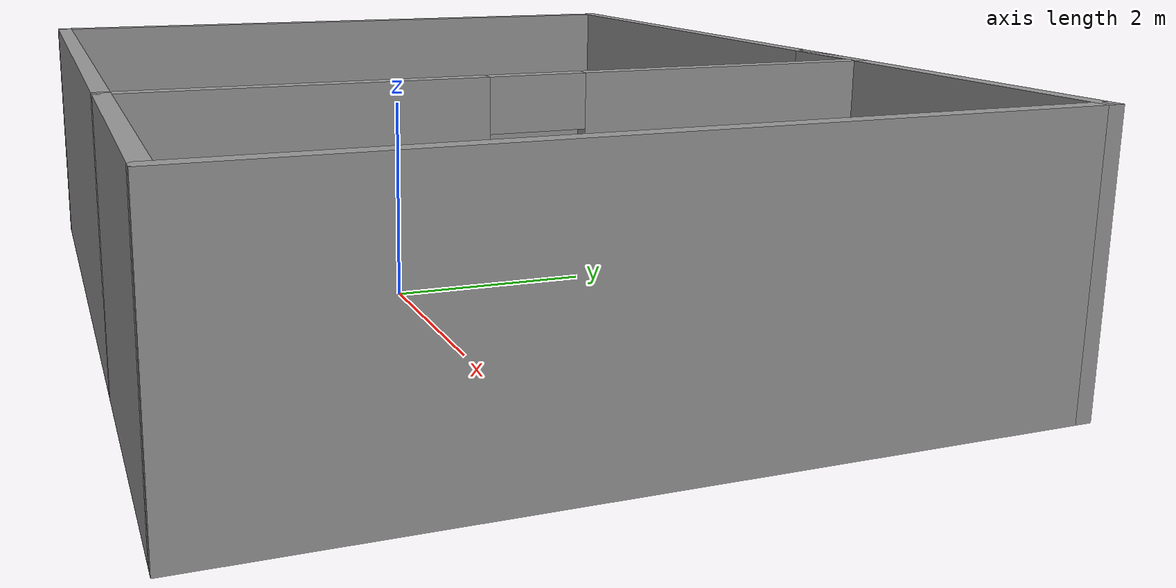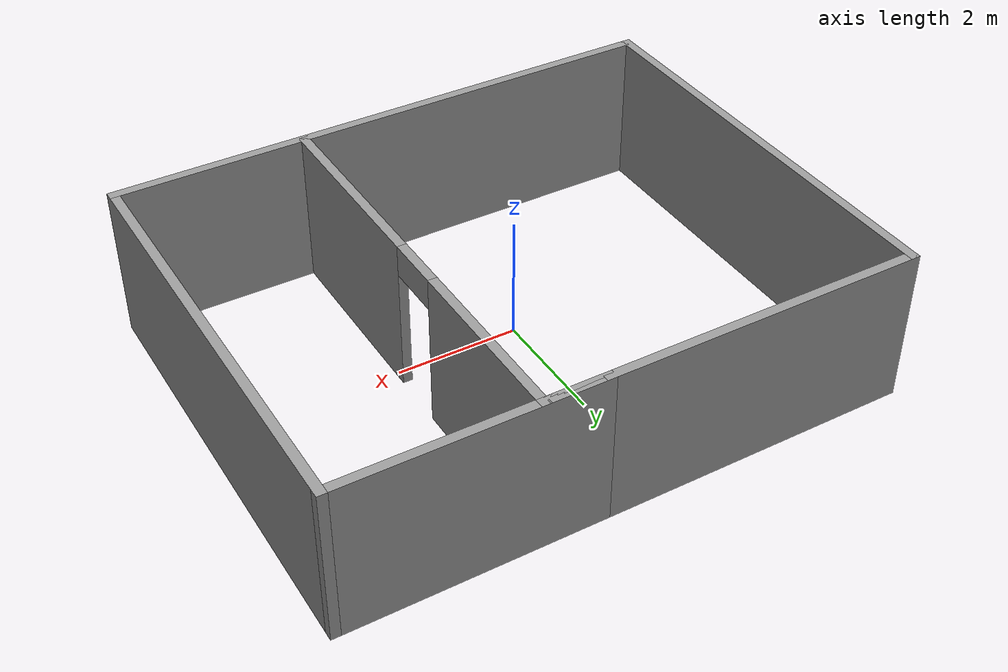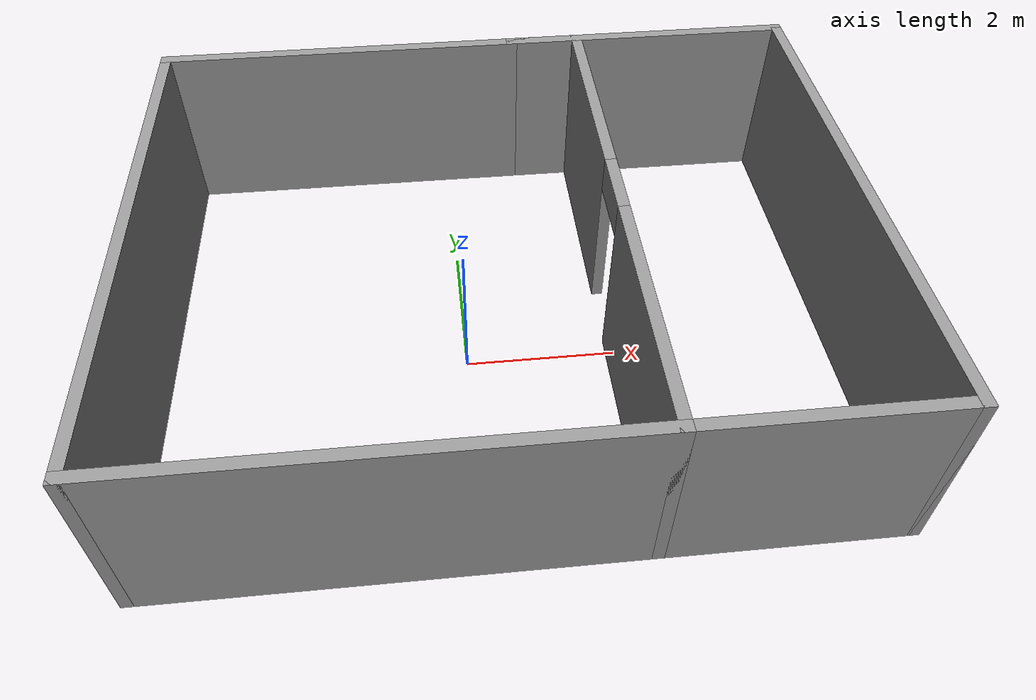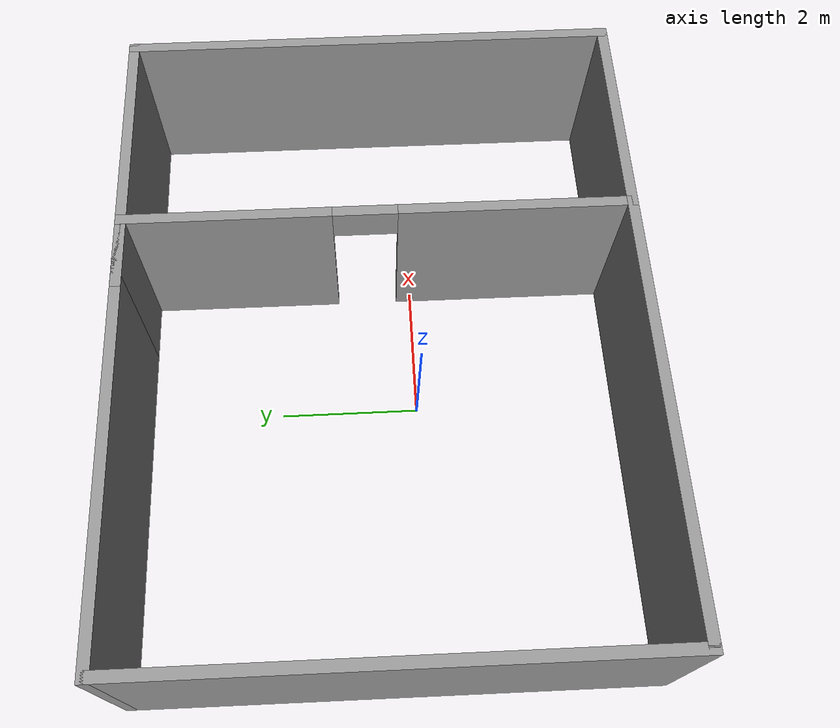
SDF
<?xml version='1.0'?>
<sdf version='1.7'>
  <model name='two_rooms'>
    <pose>0.5 0.5 0 0 -0 0</pose>
    <link name='Wall_22'>
      <collision name='Wall_22_Collision'>
        <geometry>
          <box>
            <size>5.15 0.15 2.5</size>
          </box>
        </geometry>
        <pose>0 0 1.25 0 -0 0</pose>
      </collision>
      <visual name='Wall_22_Visual'>
        <pose>0 0 1.25 0 -0 0</pose>
        <geometry>
          <box>
            <size>5.15 0.15 2.5</size>
          </box>
        </geometry>
        <material>
          <script>
            <uri>file://media/materials/scripts/gazebo.material</uri>
            <name>Gazebo/Grey</name>
          </script>
          <ambient>1 1 1 1</ambient>
        </material>
        <meta>
          <layer>0</layer>
        </meta>
      </visual>
      <pose>-2 3.5 0 0 -0 3.14159</pose>
    </link>
    <link name='Wall_23'>
      <collision name='Wall_23_Collision'>
        <geometry>
          <box>
            <size>7.15 0.15 2.5</size>
          </box>
        </geometry>
        <pose>0 0 1.25 0 -0 0</pose>
      </collision>
      <visual name='Wall_23_Visual'>
        <pose>0 0 1.25 0 -0 0</pose>
        <geometry>
          <box>
            <size>7.15 0.15 2.5</size>
          </box>
        </geometry>
        <material>
          <script>
            <uri>file://media/materials/scripts/gazebo.material</uri>
            <name>Gazebo/Grey</name>
          </script>
          <ambient>1 1 1 1</ambient>
        </material>
        <meta>
          <layer>0</layer>
        </meta>
      </visual>
      <pose>-4.5 -0 0 0 -0 -1.5708</pose>
    </link>
    <link name='Wall_24'>
      <collision name='Wall_24_Collision'>
        <geometry>
          <box>
            <size>6.11559 0.15 2.5</size>
          </box>
        </geometry>
        <pose>0 0 1.25 0 -0 0</pose>
      </collision>
      <visual name='Wall_24_Visual'>
        <pose>0 0 1.25 0 -0 0</pose>
        <geometry>
          <box>
            <size>6.11559 0.15 2.5</size>
          </box>
        </geometry>
        <material>
          <script>
            <uri>file://media/materials/scripts/gazebo.material</uri>
            <name>Gazebo/Grey</name>
          </script>
          <ambient>1 1 1 1</ambient>
        </material>
        <meta>
          <layer>0</layer>
        </meta>
      </visual>
      <pose>-1.51721 -3.5 0 0 -0 0</pose>
    </link>
    <link name='Wall_25'>
      <collision name='Wall_25_Collision'>
        <geometry>
          <box>
            <size>3.18441 0.15 2.5</size>
          </box>
        </geometry>
        <pose>0 0 1.25 0 -0 0</pose>
      </collision>
      <visual name='Wall_25_Visual'>
        <pose>0 0 1.25 0 -0 0</pose>
        <geometry>
          <box>
            <size>3.18441 0.15 2.5</size>
          </box>
        </geometry>
        <material>
          <script>
            <uri>file://media/materials/scripts/gazebo.material</uri>
            <name>Gazebo/Grey</name>
          </script>
          <ambient>1 1 1 1</ambient>
        </material>
        <meta>
          <layer>0</layer>
        </meta>
      </visual>
      <pose>2.98279 -3.5 0 0 -0 0</pose>
    </link>
    <link name='Wall_26'>
      <collision name='Wall_26_Collision'>
        <geometry>
          <box>
            <size>7.15 0.15 2.5</size>
          </box>
        </geometry>
        <pose>0 0 1.25 0 -0 0</pose>
      </collision>
      <visual name='Wall_26_Visual'>
        <pose>0 0 1.25 0 -0 0</pose>
        <geometry>
          <box>
            <size>7.15 0.15 2.5</size>
          </box>
        </geometry>
        <material>
          <script>
            <uri>file://media/materials/scripts/gazebo.material</uri>
            <name>Gazebo/Grey</name>
          </script>
          <ambient>1 1 1 1</ambient>
        </material>
        <meta>
          <layer>0</layer>
        </meta>
      </visual>
      <pose>4.5 -0 0 0 -0 1.5708</pose>
    </link>
    <link name='Wall_27'>
      <collision name='Wall_27_Collision'>
        <geometry>
          <box>
            <size>4.15 0.15 2.5</size>
          </box>
        </geometry>
        <pose>0 0 1.25 0 -0 0</pose>
      </collision>
      <visual name='Wall_27_Visual'>
        <pose>0 0 1.25 0 -0 0</pose>
        <geometry>
          <box>
            <size>4.15 0.15 2.5</size>
          </box>
        </geometry>
        <material>
          <script>
            <uri>file://media/materials/scripts/gazebo.material</uri>
            <name>Gazebo/Grey</name>
          </script>
          <ambient>1 1 1 1</ambient>
        </material>
        <meta>
          <layer>0</layer>
        </meta>
      </visual>
      <pose>2.5 3.5 0 0 -0 3.14159</pose>
    </link>
    <link name='Wall_28'>
      <collision name='Wall_28_Collision'>
        <geometry>
          <box>
            <size>1.11559 0.15 2.5</size>
          </box>
        </geometry>
        <pose>0 0 1.25 0 -0 0</pose>
      </collision>
      <visual name='Wall_28_Visual'>
        <pose>0 0 1.25 0 -0 0</pose>
        <geometry>
          <box>
            <size>1.11559 0.15 2.5</size>
          </box>
        </geometry>
        <material>
          <script>
            <uri>file://media/materials/scripts/gazebo.material</uri>
            <name>Gazebo/Grey</name>
          </script>
          <ambient>1 1 1 1</ambient>
        </material>
        <meta>
          <layer>0</layer>
        </meta>
      </visual>
      <pose>0.982792 3.5 0 0 -0 0</pose>
    </link>
    <link name='Wall_29'>
      <pose>1.46558 -0 0 0 -0 -1.5708</pose>
      <visual name='Wall_29_Visual_0'>
        <pose>-2.0995 0 1.25 0 -0 0</pose>
        <geometry>
          <box>
            <size>2.951 0.15 2.5</size>
          </box>
        </geometry>
        <material>
          <script>
            <uri>file://media/materials/scripts/gazebo.material</uri>
            <name>Gazebo/Grey</name>
          </script>
          <ambient>1 1 1 1</ambient>
        </material>
        <meta>
          <layer>0</layer>
        </meta>
      </visual>
      <collision name='Wall_29_Collision_0'>
        <geometry>
          <box>
            <size>2.951 0.15 2.5</size>
          </box>
        </geometry>
        <pose>-2.0995 0 1.25 0 -0 0</pose>
      </collision>
      <visual name='Wall_29_Visual_1'>
        <pose>1.9255 0 1.25 0 -0 0</pose>
        <geometry>
          <box>
            <size>3.299 0.15 2.5</size>
          </box>
        </geometry>
        <material>
          <script>
            <uri>file://media/materials/scripts/gazebo.material</uri>
            <name>Gazebo/Grey</name>
          </script>
          <ambient>1 1 1 1</ambient>
        </material>
        <meta>
          <layer>0</layer>
        </meta>
      </visual>
      <collision name='Wall_29_Collision_1'>
        <geometry>
          <box>
            <size>3.299 0.15 2.5</size>
          </box>
        </geometry>
        <pose>1.9255 0 1.25 0 -0 0</pose>
      </collision>
      <visual name='Wall_29_Visual_2'>
        <pose>-0.174001 0 2.25 0 -0 0</pose>
        <geometry>
          <box>
            <size>0.9 0.15 0.5</size>
          </box>
        </geometry>
        <material>
          <script>
            <uri>file://media/materials/scripts/gazebo.material</uri>
            <name>Gazebo/Grey</name>
          </script>
          <ambient>1 1 1 1</ambient>
        </material>
        <meta>
          <layer>0</layer>
        </meta>
      </visual>
      <collision name='Wall_29_Collision_2'>
        <geometry>
          <box>
            <size>0.9 0.15 0.5</size>
          </box>
        </geometry>
        <pose>-0.174001 0 2.25 0 -0 0</pose>
      </collision>
    </link>
    <static>1</static>
  </model>
</sdf>
